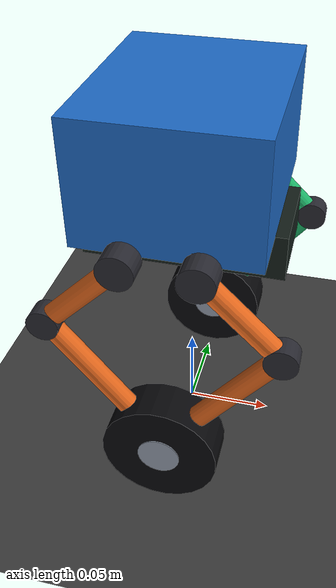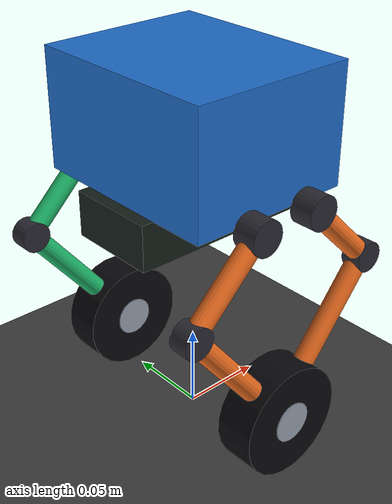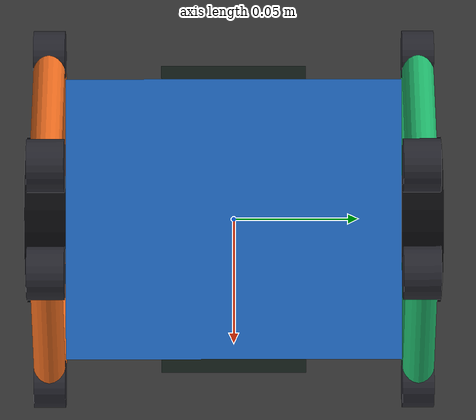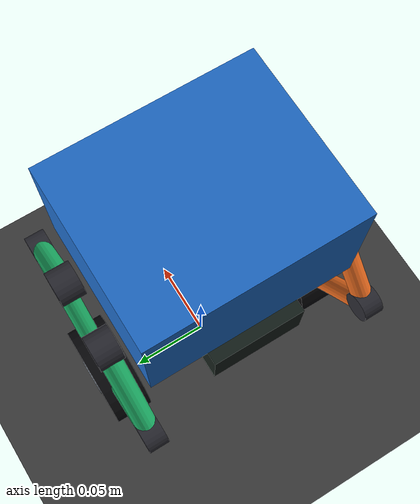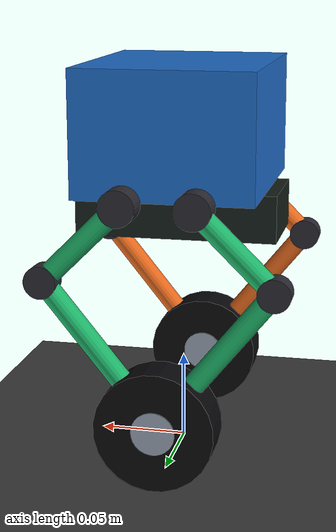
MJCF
<mujoco model="two_wheel_legged_five_bar">

  <compiler angle="radian" autolimits="true"/>
  <option timestep="0.001" integrator="implicitfast" gravity="0 0 -9.81"
          solver="Newton" iterations="80" tolerance="1e-10"/>

  <visual>
    <headlight ambient="0.35 0.35 0.35" diffuse="0.75 0.75 0.75"/>
    <rgba haze="0.15 0.25 0.35 1"/>
    <global azimuth="135" elevation="-18"/>
  </visual>

  <asset>
    <texture name="sky" type="skybox" builtin="gradient"
             rgb1="0.22 0.32 0.45" rgb2="0.02 0.03 0.05"
             width="512" height="3072"/>
    <texture name="grid" type="2d" builtin="checker"
             rgb1="0.18 0.18 0.18" rgb2="0.28 0.28 0.28"
             mark="edge" markrgb="0.8 0.8 0.8"
             width="300" height="300"/>
    <material name="floor" texture="grid" texuniform="true"
              texrepeat="8 8" reflectance="0.12"/>
    <material name="body" rgba="0.12 0.42 0.78 1"/>
    <material name="left_link" rgba="0.12 0.72 0.42 1"/>
    <material name="right_link" rgba="0.92 0.42 0.12 1"/>
    <material name="joint" rgba="0.16 0.16 0.19 1"/>
    <material name="tire" rgba="0.035 0.035 0.045 1"/>
    <material name="hub" rgba="0.58 0.62 0.68 1"/>
    <material name="battery" rgba="0.08 0.12 0.10 1"/>
  </asset>

  <default>
    <geom friction="1.2 0.02 0.002" condim="4"/>
    <joint damping="0.02" armature="0.0002"/>

    <default class="link">
      <joint type="hinge" axis="0 1 0" limited="true"
             range="-1.45 1.45"/>
      <geom type="capsule" size="0.006"
            contype="1" conaffinity="1"
            friction="0.8 0.02 0.002" condim="4"
            mass="0.0125"/>
    </default>

    <!-- Joint-test mode: ctrl is target joint angle in radians. -->
    <default class="hip_position_servo">
      <position kp="8.0" kv="0.25"
                ctrllimited="true" ctrlrange="-0.80 0.80"
                forcelimited="true" forcerange="-2.0 2.0"/>
    </default>

    <!-- Joint-test mode: ctrl is target wheel speed in rad/s. -->
    <default class="wheel_velocity_servo">
      <velocity kv="0.08"
                ctrllimited="true" ctrlrange="-30 30"
                forcelimited="true" forcerange="-0.6 0.6"/>
    </default>
  </default>

  <worldbody>
    <light pos="0 -1.5 2.0" dir="0 0 -1" directional="true"/>
    <geom name="ground" type="plane" size="0 0 0.05" material="floor"/>

    <body name="torso" pos="0 0 0.153">
      <freejoint name="root"/>

      <!-- 0.3261 kg torso + 8 x 0.0125 kg links = 0.4261 kg. -->
      <geom name="torso_geom" type="box" pos="0 0 0.035"
            size="0.050 0.060 0.035"
            material="body" mass="0.3261"/>
      <!-- 53.7 x 114 x 26.6 mm battery, mounted under the torso. -->
      <geom name="battery_pack" type="box" pos="0 0 -0.0133"
            euler="0 0 1.5707963268"
            size="0.02685 0.057 0.0133"
            material="battery" mass="0.222"/>
      <site name="imu" pos="0 0 0.055" size="0.006" rgba="1 1 0 1"/>
      <site name="hip_midpoint" pos="0 0 0" size="0.003" rgba="0 1 1 1"/>

      <!-- ==================== LEFT FIVE-BAR LEG ==================== -->
      <!-- Front branch: static home rotations make joint qpos=0 the 120 mm pose. -->
      <body name="left_front_upper" pos="0.020 0.070 0"
            euler="0 -0.7925588591 0" childclass="link">
        <joint name="left_front_hip"/>
        <geom name="left_front_upper_geom" fromto="0 0 0 0 0 -0.060"
              material="left_link"/>
        <geom type="cylinder" size="0.010 0.007"
              euler="1.5707963268 0 0" material="joint"
              contype="0" conaffinity="0" mass="0"/>

        <body name="left_front_lower" pos="0 0 -0.060"
              euler="0 1.4706289323 0">
          <joint name="left_front_knee"/>
          <geom name="left_front_lower_geom" fromto="0 0 0 0 0 -0.100"
                material="left_link"/>
          <geom type="cylinder" size="0.009 0.006"
                euler="1.5707963268 0 0" material="joint"
                contype="0" conaffinity="0" mass="0"/>

          <!-- The wheel carrier belongs to the front branch. -->
          <body name="left_wheel_carrier" pos="0 0 -0.100">
            <site name="left_front_endpoint" size="0.004" rgba="1 1 0 1"/>
            <site name="left_wheel_contact_site" type="sphere"
                  size="0.035" rgba="0 0 0 0"/>

            <body name="left_wheel">
              <joint name="left_wheel_joint" type="hinge" axis="0 1 0"
                     damping="0.001" armature="0.00005" limited="false"/>
              <!-- Two wheels total 0.15 kg, matching MATLAB M=0.15 kg. -->
              <geom name="left_tire" type="cylinder"
                    size="0.033 0.012" euler="1.5707963268 0 0"
                    material="tire" mass="0.075"
                    contype="1" conaffinity="1"
                    friction="1.4 0.02 0.002" condim="4"/>
              <geom name="left_hub" type="cylinder"
                    size="0.012 0.0125" euler="1.5707963268 0 0"
                    material="hub" mass="0"
                    contype="0" conaffinity="0"/>
            </body>
          </body>
        </body>
      </body>

      <!-- Rear branch. Its endpoint is connected to the front wheel carrier. -->
      <body name="left_rear_upper" pos="-0.020 0.070 0"
            euler="0 0.7925588591 0" childclass="link">
        <joint name="left_rear_hip"/>
        <geom name="left_rear_upper_geom" fromto="0 0 0 0 0 -0.060"
              material="left_link"/>
        <geom type="cylinder" size="0.010 0.007"
              euler="1.5707963268 0 0" material="joint"
              contype="0" conaffinity="0" mass="0"/>

        <body name="left_rear_lower" pos="0 0 -0.060"
              euler="0 -1.4706289323 0">
          <joint name="left_rear_knee"/>
          <geom name="left_rear_lower_geom" fromto="0 0 0 0 0 -0.100"
                material="left_link"/>
          <geom type="cylinder" size="0.009 0.006"
                euler="1.5707963268 0 0" material="joint"
                contype="0" conaffinity="0" mass="0"/>
          <site name="left_rear_endpoint" pos="0 0 -0.100"
                size="0.004" rgba="1 1 0 1"/>
        </body>
      </body>

      <!-- ==================== RIGHT FIVE-BAR LEG ==================== -->
      <body name="right_front_upper" pos="0.020 -0.070 0"
            euler="0 -0.7925588591 0" childclass="link">
        <joint name="right_front_hip"/>
        <geom name="right_front_upper_geom" fromto="0 0 0 0 0 -0.060"
              material="right_link"/>
        <geom type="cylinder" size="0.010 0.007"
              euler="1.5707963268 0 0" material="joint"
              contype="0" conaffinity="0" mass="0"/>

        <body name="right_front_lower" pos="0 0 -0.060"
              euler="0 1.4706289323 0">
          <joint name="right_front_knee"/>
          <geom name="right_front_lower_geom" fromto="0 0 0 0 0 -0.100"
                material="right_link"/>
          <geom type="cylinder" size="0.009 0.006"
                euler="1.5707963268 0 0" material="joint"
                contype="0" conaffinity="0" mass="0"/>

          <body name="right_wheel_carrier" pos="0 0 -0.100">
            <site name="right_front_endpoint" size="0.004" rgba="1 1 0 1"/>
            <site name="right_wheel_contact_site" type="sphere"
                  size="0.035" rgba="0 0 0 0"/>

            <body name="right_wheel">
              <joint name="right_wheel_joint" type="hinge" axis="0 1 0"
                     damping="0.001" armature="0.00005" limited="false"/>
              <geom name="right_tire" type="cylinder"
                    size="0.033 0.012" euler="1.5707963268 0 0"
                    material="tire" mass="0.075"
                    contype="1" conaffinity="1"
                    friction="1.4 0.02 0.002" condim="4"/>
              <geom name="right_hub" type="cylinder"
                    size="0.012 0.0125" euler="1.5707963268 0 0"
                    material="hub" mass="0"
                    contype="0" conaffinity="0"/>
            </body>
          </body>
        </body>
      </body>

      <body name="right_rear_upper" pos="-0.020 -0.070 0"
            euler="0 0.7925588591 0" childclass="link">
        <joint name="right_rear_hip"/>
        <geom name="right_rear_upper_geom" fromto="0 0 0 0 0 -0.060"
              material="right_link"/>
        <geom type="cylinder" size="0.010 0.007"
              euler="1.5707963268 0 0" material="joint"
              contype="0" conaffinity="0" mass="0"/>

        <body name="right_rear_lower" pos="0 0 -0.060"
              euler="0 -1.4706289323 0">
          <joint name="right_rear_knee"/>
          <geom name="right_rear_lower_geom" fromto="0 0 0 0 0 -0.100"
                material="right_link"/>
          <geom type="cylinder" size="0.009 0.006"
                euler="1.5707963268 0 0" material="joint"
                contype="0" conaffinity="0" mass="0"/>
          <site name="right_rear_endpoint" pos="0 0 -0.100"
                size="0.004" rgba="1 1 0 1"/>
        </body>
      </body>
    </body>
  </worldbody>

  <contact>
    <!--
      These bodies meet at ideal revolute/closure joints. Their collision
      shapes overlap by construction and must not generate contact forces.
    -->
    <exclude name="left_lower_closure_exclude"
             body1="left_front_lower" body2="left_rear_lower"/>
    <exclude name="left_rear_wheel_joint_exclude"
             body1="left_rear_lower" body2="left_wheel"/>
    <exclude name="right_lower_closure_exclude"
             body1="right_front_lower" body2="right_rear_lower"/>
    <exclude name="right_rear_wheel_joint_exclude"
             body1="right_rear_lower" body2="right_wheel"/>
  </contact>

  <!-- Each connect closes one five-bar loop while preserving endpoint rotation. -->
  <equality>
    <connect name="left_five_bar_closure"
             site1="left_front_endpoint" site2="left_rear_endpoint"
             solref="0.002 1" solimp="0.95 0.99 0.001"/>
    <connect name="right_five_bar_closure"
             site1="right_front_endpoint" site2="right_rear_endpoint"
             solref="0.002 1" solimp="0.95 0.99 0.001"/>
  </equality>

  <!--
    Joint-test controls shown in the Viewer Control panel:
      hip ctrl   = target angle (rad)
      wheel ctrl = target speed (rad/s)
  -->
  <actuator>
    <position name="left_front_hip_target" joint="left_front_hip"
              class="hip_position_servo"/>
    <position name="left_rear_hip_target" joint="left_rear_hip"
              class="hip_position_servo"/>
    <position name="right_front_hip_target" joint="right_front_hip"
              class="hip_position_servo"/>
    <position name="right_rear_hip_target" joint="right_rear_hip"
              class="hip_position_servo"/>
    <velocity name="left_wheel_speed" joint="left_wheel_joint"
              class="wheel_velocity_servo"/>
    <velocity name="right_wheel_speed" joint="right_wheel_joint"
              class="wheel_velocity_servo"/>
  </actuator>

  <sensor>
    <framequat name="imu_orientation" objtype="site" objname="imu"/>
    <gyro name="imu_gyro" site="imu"/>
    <accelerometer name="imu_accelerometer" site="imu"/>
    <touch name="left_wheel_contact" site="left_wheel_contact_site"/>
    <touch name="right_wheel_contact" site="right_wheel_contact_site"/>
    <jointpos name="left_wheel_position" joint="left_wheel_joint"/>
    <jointvel name="left_wheel_velocity" joint="left_wheel_joint"/>
    <jointpos name="right_wheel_position" joint="right_wheel_joint"/>
    <jointvel name="right_wheel_velocity" joint="right_wheel_joint"/>
  </sensor>

  <!-- All articulated joints use their geometry-defined home pose at qpos=0. -->
  <keyframe>
    <key name="home"
         qpos="0 0 0.153 1 0 0 0 0 0 0 0 0 0 0 0 0 0"/>
  </keyframe>
</mujoco>
